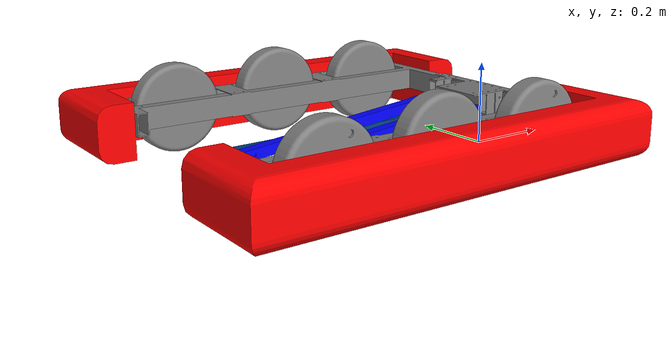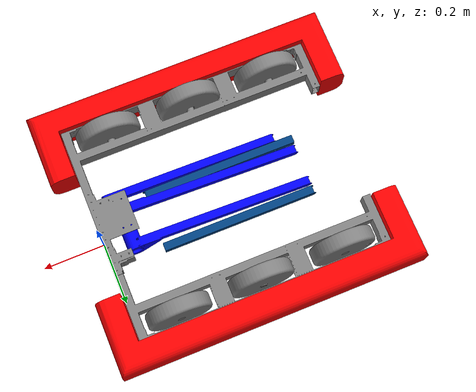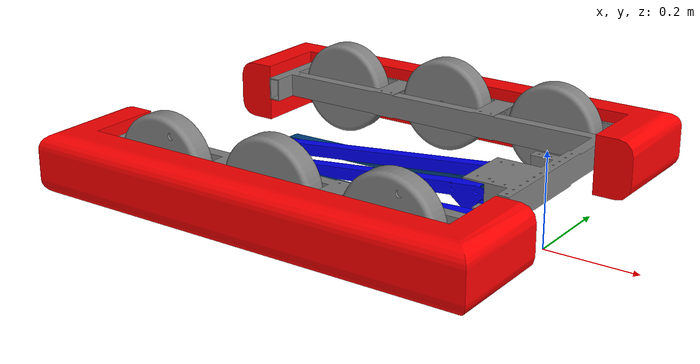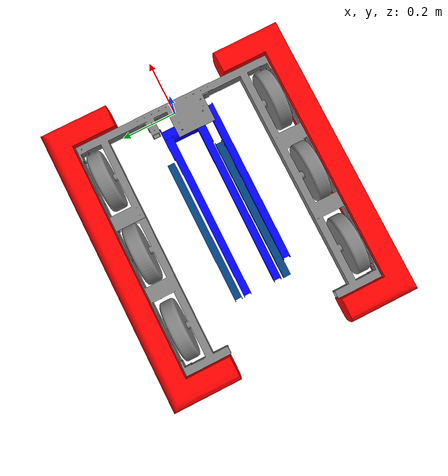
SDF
<?xml version="1.0" encoding="utf-8"?>
<sdf version="1.6">
  <model name="SimBot2019-3">
    <pose>0 0 0.12446 0 0 0</pose>
    <plugin name="clock" filename="libgz_clock.so">
      <topic>/gazebo/frc/time</topic>
    </plugin>
    <link name="Frame">
      <gravity>1</gravity>
      <self_collide>0</self_collide>
      <pose>-0.327678113676471 -0.00117983358945988 0.000429934584262812 -1.5707963267949 0 1.5707963267949</pose>
      <must_be_base_link>1</must_be_base_link>
      <velocity_decay>
        <linear>0</linear>
        <angular>0</angular>
      </velocity_decay>
      <inertial>
        <mass>20</mass>
        <pose>0 0 0 0 0 0</pose>
        <inertia>
          <ixx>0.213428945837098</ixx>
          <ixy>1.61536090485215E-05</ixy>
          <ixz>0.0011849677762145</ixz>
          <iyy>0.434252218788577</iyy>
          <iyz>0.000463669993704549</iyz>
          <izz>0.221276468824371</izz>
        </inertia>
      </inertial>
      <collision name="Frame_collision">
        <pose>0.00117983358945995 0.000429934584262742 0.0787218957234473 0 0 0</pose>
        <geometry>
          <mesh>
            <scale>1 1 1</scale>
            <uri>model://SimBot2019-3/meshes/Frame_col.STL</uri>
          </mesh>
        </geometry>
        <surface>
          <contact>
            <ode />
          </contact>
          <friction>
            <ode>
              <mu>1</mu>
              <mu2>1</mu2>
            </ode>
          </friction>
        </surface>
      </collision>
      <visual name="Frame_visual">
        <pose>0.00117983358945995 0.000429934584262742 0.0787218957234473 0 0 0</pose>
        <material>
          <ambient>0.501960784313725 0.501960784313725 0.501960784313725 1</ambient>
          <diffuse>0.501960784313725 0.501960784313725 0.501960784313725 1</diffuse>
        </material>
        <geometry>
          <mesh>
            <scale>1 1 1</scale>
            <uri>model://SimBot2019-3/meshes/Frame.STL</uri>
          </mesh>
        </geometry>
      </visual>
    </link>
    <link name="R1Wheel">
      <gravity>1</gravity>
      <self_collide>0</self_collide>
      <pose>-0.673098427026752 0.303262709940696 0.00169521560482934 -1.5707963267949 0 1.5707963267949</pose>
      <must_be_base_link>0</must_be_base_link>
      <velocity_decay>
        <linear>0</linear>
        <angular>0</angular>
      </velocity_decay>
      <inertial>
        <mass>0.255325203825891</mass>
        <pose>0 0 0 0 0 0</pose>
        <inertia>
          <ixx>0</ixx>
          <ixy>0</ixy>
          <ixz>0</ixz>
          <iyy>0</iyy>
          <iyz>0</iyz>
          <izz>0</izz>
        </inertia>
      </inertial>
      <collision name="R1Wheel_collision">
        <pose>-0.303262709940696 0.00169521560482919 -0.266698417626834 0 0 0</pose>
        <geometry>
          <mesh>
            <scale>1 1 1</scale>
            <uri>model://SimBot2019-3/meshes/R1Wheel_col.STL</uri>
          </mesh>
        </geometry>
        <surface>
          <contact>
            <ode />
          </contact>
          <friction>
            <ode>
              <mu>1</mu>
              <mu2>1</mu2>
            </ode>
          </friction>
        </surface>
      </collision>
      <visual name="R1Wheel_visual">
        <pose>-0.303262709940696 0.00169521560482919 -0.266698417626834 0 0 0</pose>
        <material>
          <ambient>0.501960784313725 0.501960784313725 0.501960784313725 1</ambient>
          <diffuse>0.501960784313725 0.501960784313725 0.501960784313725 1</diffuse>
        </material>
        <geometry>
          <mesh>
            <scale>1 1 1</scale>
            <uri>model://SimBot2019-3/meshes/R1Wheel.STL</uri>
          </mesh>
        </geometry>
      </visual>
    </link>
    <joint name="Frame-R1Wheel" type="revolute">
      <parent>Frame</parent>
      <child>R1Wheel</child>
      <pose>0 4.42156048210489E-05 -2.73638550629673E-06 0 0 0</pose>
      <axis>
        <xyz>-1 0 0</xyz>
        <dynamics>
          <damping>1</damping>
          <friction>1</friction>
        </dynamics>
        <limit>
          <effort>50</effort>
        </limit>
      </axis>
    </joint>
    <link name="R2Wheel">
      <gravity>1</gravity>
      <self_collide>0</self_collide>
      <pose>-0.405312662240039 0.303262709940696 -0.00385752270000407 -1.5707963267949 0 1.5707963267949</pose>
      <must_be_base_link>0</must_be_base_link>
      <velocity_decay>
        <linear>0</linear>
        <angular>0</angular>
      </velocity_decay>
      <inertial>
        <mass>0.255325203825891</mass>
        <pose>0 0 0 0 0 0</pose>
        <inertia>
          <ixx>0</ixx>
          <ixy>0</ixy>
          <ixz>0</ixz>
          <iyy>0</iyy>
          <iyz>0</iyz>
          <izz>0</izz>
        </inertia>
      </inertial>
      <collision name="R2Wheel_collision">
        <pose>-0.303262709940696 -0.00385752270000415 0.00108734715987955 0 0 0</pose>
        <geometry>
          <mesh>
            <scale>1 1 1</scale>
            <uri>model://SimBot2019-3/meshes/R2Wheel_col.STL</uri>
          </mesh>
        </geometry>
        <surface>
          <contact>
            <ode />
          </contact>
          <friction>
            <ode>
              <mu>1</mu>
              <mu2>1</mu2>
            </ode>
          </friction>
        </surface>
      </collision>
      <visual name="R2Wheel_visual">
        <pose>-0.303262709940696 -0.00385752270000415 0.00108734715987955 0 0 0</pose>
        <material>
          <ambient>0.501960784313725 0.501960784313725 0.501960784313725 1</ambient>
          <diffuse>0.501960784313725 0.501960784313725 0.501960784313725 1</diffuse>
        </material>
        <geometry>
          <mesh>
            <scale>1 1 1</scale>
            <uri>model://SimBot2019-3/meshes/R2Wheel.STL</uri>
          </mesh>
        </geometry>
      </visual>
    </link>
    <joint name="Frame-R2Wheel" type="revolute">
      <parent>Frame</parent>
      <child>R2Wheel</child>
      <pose>0 4.38148899713098E-05 -6.5393372950496E-06 0 0 0</pose>
      <axis>
        <xyz>-1 0 0</xyz>
        <dynamics>
          <damping>1</damping>
          <friction>1</friction>
        </dynamics>
        <limit>
          <effort>50</effort>
        </limit>
      </axis>
    </joint>
    <link name="R3Wheel">
      <gravity>1</gravity>
      <self_collide>0</self_collide>
      <pose>-0.139700611281359 0.303199220635698 0.00169514092478139 -1.5707963267949 0 1.5707963267949</pose>
      <must_be_base_link>0</must_be_base_link>
      <velocity_decay>
        <linear>0</linear>
        <angular>0</angular>
      </velocity_decay>
      <inertial>
        <mass>0.255325203825891</mass>
        <pose>0 0 0 0 0 0</pose>
        <inertia>
          <ixx>0</ixx>
          <ixy>0</ixy>
          <ixz>0</ixz>
          <iyy>0</iyy>
          <iyz>0</iyz>
          <izz>0</izz>
        </inertia>
      </inertial>
      <collision name="R3Wheel_collision">
        <pose>-0.303199220635698 0.00169514092478136 0.266699398118559 0 0 0</pose>
        <geometry>
          <mesh>
            <scale>1 1 1</scale>
            <uri>model://SimBot2019-3/meshes/R3Wheel_col.STL</uri>
          </mesh>
        </geometry>
        <surface>
          <contact>
            <ode />
          </contact>
          <friction>
            <ode>
              <mu>1</mu>
              <mu2>1</mu2>
            </ode>
          </friction>
        </surface>
      </collision>
      <visual name="R3Wheel_visual">
        <pose>-0.303199220635698 0.00169514092478136 0.266699398118559 0 0 0</pose>
        <material>
          <ambient>0.501960784313725 0.501960784313725 0.501960784313725 1</ambient>
          <diffuse>0.501960784313725 0.501960784313725 0.501960784313725 1</diffuse>
        </material>
        <geometry>
          <mesh>
            <scale>1 1 1</scale>
            <uri>model://SimBot2019-3/meshes/R3Wheel.STL</uri>
          </mesh>
        </geometry>
      </visual>
    </link>
    <joint name="Frame-R3Wheel" type="revolute">
      <parent>Frame</parent>
      <child>R3Wheel</child>
      <pose>0 4.41409247781261E-05 3.75316870410147E-06 0 0 0</pose>
      <axis>
        <xyz>-1 0 0</xyz>
        <dynamics>
          <damping>1</damping>
          <friction>1</friction>
        </dynamics>
        <limit>
          <effort>50</effort>
        </limit>
      </axis>
    </joint>
    <link name="L1Wheel">
      <gravity>1</gravity>
      <self_collide>0</self_collide>
      <pose>-0.673096884472197 -0.30326270994069 0.00169528357489406 -1.5707963267949 0 1.5707963267949</pose>
      <must_be_base_link>0</must_be_base_link>
      <velocity_decay>
        <linear>0</linear>
        <angular>0</angular>
      </velocity_decay>
      <inertial>
        <mass>0.255325203825891</mass>
        <pose>0 0 0 0 0 0</pose>
        <inertia>
          <ixx>0</ixx>
          <ixy>0</ixy>
          <ixz>0</ixz>
          <iyy>0</iyy>
          <iyz>0</iyz>
          <izz>0</izz>
        </inertia>
      </inertial>
      <collision name="L1Wheel_collision">
        <pose>0.30326270994069 0.00169528357489391 -0.266696875072279 0 0 0</pose>
        <geometry>
          <mesh>
            <scale>1 1 1</scale>
            <uri>model://SimBot2019-3/meshes/L1Wheel_col.STL</uri>
          </mesh>
        </geometry>
        <surface>
          <contact>
            <ode />
          </contact>
          <friction>
            <ode>
              <mu>1</mu>
              <mu2>1</mu2>
            </ode>
          </friction>
        </surface>
      </collision>
      <visual name="L1Wheel_visual">
        <pose>0.30326270994069 0.00169528357489391 -0.266696875072279 0 0 0</pose>
        <material>
          <ambient>0.501960784313725 0.501960784313725 0.501960784313725 1</ambient>
          <diffuse>0.501960784313725 0.501960784313725 0.501960784313725 1</diffuse>
        </material>
        <geometry>
          <mesh>
            <scale>1 1 1</scale>
            <uri>model://SimBot2019-3/meshes/L1Wheel.STL</uri>
          </mesh>
        </geometry>
      </visual>
    </link>
    <joint name="Frame-L1Wheel" type="revolute">
      <parent>Frame</parent>
      <child>L1Wheel</child>
      <pose>0 4.42835748970555E-05 -1.21347009340855E-06 0 0 0</pose>
      <axis>
        <xyz>-1 0 0</xyz>
        <dynamics>
          <damping>1</damping>
          <friction>1</friction>
        </dynamics>
        <limit>
          <effort>50</effort>
        </limit>
      </axis>
    </joint>
    <link name="L2Wheel">
      <gravity>1</gravity>
      <self_collide>0</self_collide>
      <pose>-0.406431067254661 -0.303368868926877 -0.0036834982409925 -1.5707963267949 0 1.5707963267949</pose>
      <must_be_base_link>0</must_be_base_link>
      <velocity_decay>
        <linear>0</linear>
        <angular>0</angular>
      </velocity_decay>
      <inertial>
        <mass>0.255325203825891</mass>
        <pose>0 0 0 0 0 0</pose>
        <inertia>
          <ixx>0</ixx>
          <ixy>0</ixy>
          <ixz>0</ixz>
          <iyy>0</iyy>
          <iyz>0</iyz>
          <izz>0</izz>
        </inertia>
      </inertial>
      <collision name="L2Wheel_collision">
        <pose>0.303368868926877 -0.00368349824099259 -3.10578547423262E-05 0 0 0</pose>
        <geometry>
          <mesh>
            <scale>1 1 1</scale>
            <uri>model://SimBot2019-3/meshes/L2Wheel_col.STL</uri>
          </mesh>
        </geometry>
        <surface>
          <contact>
            <ode />
          </contact>
          <friction>
            <ode>
              <mu>1</mu>
              <mu2>1</mu2>
            </ode>
          </friction>
        </surface>
      </collision>
      <visual name="L2Wheel_visual">
        <pose>0.303368868926877 -0.00368349824099259 -3.10578547423262E-05 0 0 0</pose>
        <material>
          <ambient>0.501960784313725 0.501960784313725 0.501960784313725 1</ambient>
          <diffuse>0.501960784313725 0.501960784313725 0.501960784313725 1</diffuse>
        </material>
        <geometry>
          <mesh>
            <scale>1 1 1</scale>
            <uri>model://SimBot2019-3/meshes/L2Wheel.STL</uri>
          </mesh>
        </geometry>
      </visual>
    </link>
    <joint name="Frame-L2Wheel" type="revolute">
      <parent>Frame</parent>
      <child>L2Wheel</child>
      <pose>0 4.10696537008477E-05 1.66069581911443E-05 0 0 0</pose>
      <axis>
        <xyz>-1 0 0</xyz>
        <dynamics>
          <damping>1</damping>
          <friction>1</friction>
        </dynamics>
        <limit>
          <effort>50</effort>
        </limit>
      </axis>
    </joint>
    <link name="L3Wheel">
      <gravity>1</gravity>
      <self_collide>0</self_collide>
      <pose>-0.139684826378901 -0.30326270994069 0.00169075891461175 -1.5707963267949 0 1.5707963267949</pose>
      <must_be_base_link>0</must_be_base_link>
      <velocity_decay>
        <linear>0</linear>
        <angular>0</angular>
      </velocity_decay>
      <inertial>
        <mass>0.255325203825891</mass>
        <pose>0 0 0 0 0 0</pose>
        <inertia>
          <ixx>0</ixx>
          <ixy>0</ixy>
          <ixz>0</ixz>
          <iyy>0</iyy>
          <iyz>0</iyz>
          <izz>0</izz>
        </inertia>
      </inertial>
      <collision name="L3Wheel_collision">
        <pose>0.30326270994069 0.00169075891461172 0.266715183021017 0 0 0</pose>
        <geometry>
          <mesh>
            <scale>1 1 1</scale>
            <uri>model://SimBot2019-3/meshes/L3Wheel_col.STL</uri>
          </mesh>
        </geometry>
        <surface>
          <contact>
            <ode />
          </contact>
          <friction>
            <ode>
              <mu>0</mu>
              <mu2>0</mu2>
            </ode>
          </friction>
        </surface>
      </collision>
      <visual name="L3Wheel_visual">
        <pose>0.30326270994069 0.00169075891461172 0.266715183021017 0 0 0</pose>
        <material>
          <ambient>0.501960784313725 0.501960784313725 0.501960784313725 1</ambient>
          <diffuse>0.501960784313725 0.501960784313725 0.501960784313725 1</diffuse>
        </material>
        <geometry>
          <mesh>
            <scale>1 1 1</scale>
            <uri>model://SimBot2019-3/meshes/L3Wheel.STL</uri>
          </mesh>
        </geometry>
      </visual>
    </link>
    <joint name="Frame-L3Wheel" type="revolute">
      <parent>Frame</parent>
      <child>L3Wheel</child>
      <pose>0 3.97589146084862E-05 1.95380711622839E-05 0 0 0</pose>
      <axis>
        <xyz>-1 0 0</xyz>
        <dynamics>
          <damping>1</damping>
          <friction>1</friction>
        </dynamics>
        <limit>
          <effort>50</effort>
        </limit>
      </axis>
    </joint>
    <link name="Climber1">
      <gravity>1</gravity>
      <self_collide>0</self_collide>
      <pose>-0.320134656436372 -0.0277296312389703 -0.0430599360980195 -1.5707963267949 0 1.5707963267949</pose>
      <must_be_base_link>0</must_be_base_link>
      <velocity_decay>
        <linear>0</linear>
        <angular>0</angular>
      </velocity_decay>
      <inertial>
        <mass>0.858973958276438</mass>
        <pose>0 0 0 0 0 0</pose>
        <inertia>
          <ixx>0.0102423158250977</ixx>
          <ixy>0.000313228215191903</ixy>
          <ixz>0.000479889907218939</ixz>
          <iyy>0.014292513754494</iyy>
          <iyz>0.000144991214678419</iyz>
          <izz>0.00414349498430736</izz>
        </inertia>
      </inertial>
      <collision name="Climber1_collision">
        <pose>0.0277296312389704 -0.0430599360980195 0.0862653529635461 0 0 0</pose>
        <geometry>
          <mesh>
            <scale>1 1 1</scale>
            <uri>model://SimBot2019-3/meshes/Climber1_col.STL</uri>
          </mesh>
        </geometry>
        <surface>
          <contact>
            <ode />
          </contact>
          <friction>
            <ode>
              <mu>0</mu>
              <mu2>0</mu2>
            </ode>
          </friction>
        </surface>
      </collision>
      <visual name="Climber1_visual">
        <pose>0.0277296312389704 -0.0430599360980195 0.0862653529635461 0 0 0</pose>
        <material>
          <ambient>0 0 1 1</ambient>
          <diffuse>0 0 1 1</diffuse>
        </material>
        <geometry>
          <mesh>
            <scale>1 1 1</scale>
            <uri>model://SimBot2019-3/meshes/Climber1.STL</uri>
          </mesh>
        </geometry>
      </visual>
    </link>
    <joint name="Frame-Climber1" type="revolute">
      <parent>Frame</parent>
      <child>Climber1</child>
      <pose>-1.70002900645727E-16 -0.00178493609802008 -0.262043383236372 0 6.28318530717959 3.14159265358979</pose>
      <axis>
        <xyz>1 1.4891775285408E-16 -6.11592854247524E-16</xyz>
        <dynamics>
          <damping>1</damping>
          <friction>1</friction>
        </dynamics>
        <limit>
          <upper>0</upper>
          <lower>0</lower>
          <effort>100</effort>
        </limit>
      </axis>
    </joint>

    <link name="Climber2">
      <gravity>1</gravity>
      <self_collide>0</self_collide>
      <pose>-0.425765057904617 0.00362463179526291 -0.0659461435902102 -1.5707963267949 0 1.5707963267949</pose>
      <must_be_base_link>0</must_be_base_link>
      <velocity_decay>
        <linear>0</linear>
        <angular>0</angular>
      </velocity_decay>
      <inertial>
        <mass>0.403193478176846</mass>
        <pose>0 0 0 0 0 0</pose>
        <inertia>
          <ixx>4.13199693631443E-06</ixx>
          <ixy>1.20232028033008E-06</ixy>
          <ixz>0.000114739951970843</ixz>
          <iyy>0.00319065427194583</iyy>
          <iyz>4.3293013408559E-08</iyz>
          <izz>0.00318652318231455</izz>
        </inertia>
      </inertial>
      <collision name="Climber2_collision">
        <pose>-0.00362463179526281 -0.0659461435902103 -0.0193650485046986 0 0 0</pose>
        <geometry>
          <mesh>
            <scale>1 1 1</scale>
            <uri>model://SimBot2019-3/meshes/Climber2_col.STL</uri>
          </mesh>
        </geometry>
        <surface>
          <contact>
            <ode />
          </contact>
          <friction>
            <ode>
              <mu>0</mu>
              <mu2>0</mu2>
            </ode>
          </friction>
        </surface>
      </collision>
      <visual name="Climber2_visual">
        <pose>-0.00362463179526281 -0.0659461435902103 -0.0193650485046986 0 0 0</pose>
        <material>
          <ambient>0 0.250980392156863 0.501960784313725 1</ambient>
          <diffuse>0 0.250980392156863 0.501960784313725 1</diffuse>
        </material>
        <geometry>
          <mesh>
            <scale>1 1 1</scale>
            <uri>model://SimBot2019-3/meshes/Climber2.STL</uri>
          </mesh>
        </geometry>
      </visual>
    </link>
    <joint name="Climber1-Climber2" type="revolute">
      <parent>Climber1</parent>
      <child>Climber2</child>
      <pose>1.30971622436249E-16 0.00252836045398647 0.241286753456162 0 5.21506836217076E-16 3.09090404763131</pose>
      <axis>
        <xyz>-0.998715607651152 -0.0506669027471588 -1.04234385304384E-15</xyz>
        <dynamics>
          <damping>0</damping>
          <friction>0</friction>
        </dynamics>
        <limit>
          <upper>0</upper>
          <lower>0</lower>
          <effort>1</effort>
        </limit>
      </axis>
    </joint>
    <link name="Bumpers">
      <gravity>1</gravity>
      <self_collide>0</self_collide>
      <pose>-0.409584647856141 4.15478934425978E-15 -0.000359091198846842 -1.5707963267949 0 1.5707963267949</pose>
      <must_be_base_link>0</must_be_base_link>
      <velocity_decay>
        <linear>0</linear>
        <angular>0</angular>
      </velocity_decay>
      <inertial>
        <mass>1.413207943277132</mass>
        <pose>0 0 0 0 0 0</pose>
        <inertia>
          <ixx>0</ixx>
          <ixy>0.000220051172388853</ixy>
          <ixz>0</ixz>
          <iyy>0.0540058256034707</iyy>
          <iyz>0</iyz>
          <izz>0.0540067222200473</izz>
        </inertia>
      </inertial>
      <collision name="Bumpers_collision">
        <pose>-4.06384328294321E-15 -0.00035909119884693 -0.00318463845622289 0 0 0</pose>
        <geometry>
          <mesh>
            <scale>1 1 1</scale>
            <uri>model://SimBot2019-3/meshes/Bumpers_col.STL</uri>
          </mesh>
        </geometry>
        <surface>
          <contact>
            <ode />
          </contact>
          <friction>
            <ode>
              <mu>0</mu>
              <mu2>0</mu2>
            </ode>
          </friction>
        </surface>
      </collision>
      <visual name="Bumpers_visual">
        <pose>-4.06384328294321E-15 -0.00035909119884693 -0.00318463845622289 0 0 0</pose>
        <material>
          <ambient>1 0 0 1</ambient>
          <diffuse>1 0 0 1</diffuse>
        </material>
        <geometry>
          <mesh>
            <scale>1 1 1</scale>
            <uri>model://SimBot2019-3/meshes/Bumpers.STL</uri>
          </mesh>
        </geometry>
      </visual>
    </link>
    <joint name="Frame-Bumpers" type="prismatic">
      <parent>Frame</parent>
      <child>Bumpers</child>
      <pose>0.190499999999996 7.58941520739853E-19 0.377815370943695 0 0 0</pose>
      <axis>
        <xyz>0 1 0</xyz>
        <dynamics>
          <damping>0</damping>
          <friction>0</friction>
        </dynamics>
        <limit>
          <upper>0</upper>
          <lower>0</lower>
          <effort>1</effort>
        </limit>
      </axis>
    </joint>
    <plugin name="Frame-R1Wheel_motor" filename="libgz_dc_motor.so">
      <joint>Frame-R1Wheel</joint>
      <topic>/gazebo/frc/simulator/pwm/1</topic>
      <multiplier>10</multiplier>
    </plugin>
    <plugin name="Frame-R2Wheel_motor" filename="libgz_dc_motor.so">
      <joint>Frame-R2Wheel</joint>
      <topic>/gazebo/frc/simulator/pwm/1</topic>
      <multiplier>10</multiplier>
    </plugin>
    <plugin name="Frame-R3Wheel_motor" filename="libgz_dc_motor.so">
      <joint>Frame-R3Wheel</joint>
      <topic>/gazebo/frc/simulator/pwm/3</topic>
      <multiplier>10</multiplier>
    </plugin>
    <plugin name="Frame-L1Wheel_motor" filename="libgz_dc_motor.so">
      <joint>Frame-L1Wheel</joint>
      <topic>/gazebo/frc/simulator/pwm/4</topic>
      <multiplier>10</multiplier>
    </plugin>
    <plugin name="Frame-L2Wheel_motor" filename="libgz_dc_motor.so">
      <joint>Frame-L2Wheel</joint>
      <topic>/gazebo/frc/simulator/pwm/4</topic>
      <multiplier>10</multiplier>
    </plugin>
    <plugin name="Frame-L3Wheel_motor" filename="libgz_dc_motor.so">
      <joint>Frame-L3Wheel</joint>
      <topic>/gazebo/frc/simulator/pwm/4</topic>
      <multiplier>10</multiplier>
    </plugin>
    <plugin name="Frame-Climber1_motor" filename="libgz_dc_motor.so">
      <joint>Frame-Climber1</joint>
      <topic>/gazebo/frc/simulator/pwm/6</topic>
      <multiplier>100</multiplier>
    </plugin>
    <plugin name="Climber1-Climber2_motor" filename="libgz_dc_motor.so">
      <joint>Climber1-Climber2</joint>
      <topic>/gazebo/frc/simulator/pwm/6</topic>
      <multiplier>100</multiplier>
    </plugin>
  </model>
</sdf>
